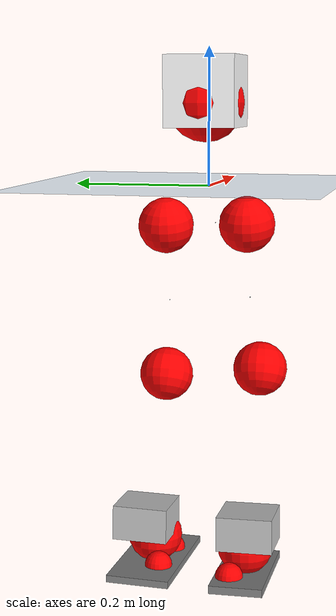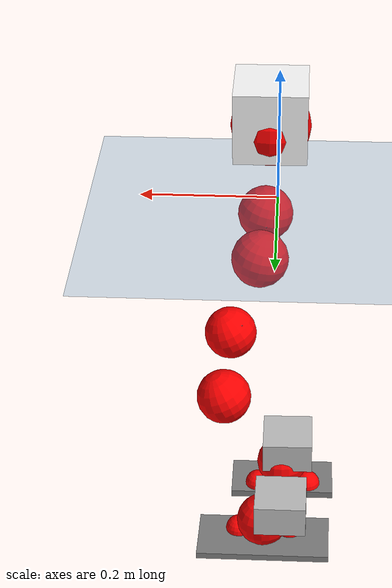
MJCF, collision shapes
<mujoco model="pi_12dof_release_v1">
  <compiler angle="radian" assetdir="assets" balanceinertia="true" inertiafromgeom="false"/>

  <option timestep="0.005" density="1.2" viscosity="2e-05"/>

  <size nkey="1"/>

  <visual>
    <quality shadowsize="8192"/>
    <map shadowclip="0.5"/>
  </visual>

  <default>
    <default class="/">
      <joint armature="0.01" damping="0.01" frictionloss="0.01"/>
      <geom contype="0" conaffinity="0" group="1" solref="-1000 -80"/>
      <site size="0.01 0.005 0.005" group="5"/>
      <general forcelimited="true" biastype="affine" gainprm="20" biasprm="0 -20 -0.5"/>
      <default class="foot">
        <geom size="0.0845 0.036 0.005" type="box" condim="6" group="4" priority="1" friction="0.9 0.2 0.2" solimp="0.015 1 0.005"/>
      </default>
      <default class="reward_collision_sphere">
        <geom group="5" rgba="1 0 0 1"/>
      </default>
    </default>
  </default>

  <asset>
    <texture type="skybox" colorspace="auto" name="//unnamed_texture_0" builtin="gradient" rgb1="0.95 0.95 0.95" rgb2="0.95 0.95 0.95" width="100" height="600"/>
    <texture type="2d" colorspace="auto" name="texplane" builtin="checker" rgb1="0.345 0.575 0.748" rgb2="0.345 0.575 0.748" markrgb="1 1 1" width="512" height="512"/>
    <material name="MatPlane" class="/" texture="texplane" texuniform="true" texrepeat="2 2" specular="0.9"/>
    <mesh name="baselink_1" class="/" file="baselink_1.STL"/>
    <mesh name="r_hip_pitch_link" class="/" file="r_hip_pitch_link.STL"/>
    <mesh name="r_hip_roll_link" class="/" file="r_hip_roll_link.STL"/>
    <mesh name="r_thigh_link" class="/" file="r_thigh_link.STL"/>
    <mesh name="r_calf_link" class="/" file="r_calf_link.STL"/>
    <mesh name="r_ankle_pitch_link" class="/" file="r_ankle_pitch_link.STL"/>
    <mesh name="r_ankle_roll_link" class="/" file="r_ankle_roll_link.STL"/>
    <mesh name="l_hip_pitch_link" class="/" file="l_hip_pitch_link.STL"/>
    <mesh name="l_hip_roll_link" class="/" file="l_hip_roll_link.STL"/>
    <mesh name="l_thigh_link" class="/" file="l_thigh_link.STL"/>
    <mesh name="l_calf_link" class="/" file="l_calf_link.STL"/>
    <mesh name="l_ankle_pitch_link" class="/" file="l_ankle_pitch_link.STL"/>
    <mesh name="l_ankle_roll_link" class="/" file="l_ankle_roll_link.STL"/>
  </asset>

  <worldbody>
    <geom name="floor" class="/" size="100 100 0.125" type="plane" group="0" material="MatPlane"/>
    <light name="toplight_shadow" class="/" pos="0 0 5" dir="0.0990148 0.0990148 -0.990148" type="directional" ambient="0.04 0.04 0.04" diffuse="0.55 0.55 0.55" specular="0.12 0.12 0.12"/>
    <light name="toplight_fill" class="/" pos="0 0 5" dir="0.0990148 0.0990148 -0.990148" type="directional" castshadow="false" ambient="0.04 0.04 0.04" diffuse="0.3 0.3 0.3" specular="0.08 0.08 0.08"/>
    <body name="trunk" pos="0.0109813 0.00682597 0.00300447" quat="0.999991 -0.00267714 0.00295447 -0.00126922">
      <inertial pos="0.0131642 -0.00163783 0.0659149" quat="0.687876 0.00186386 0.0160429 0.725649" mass="2.30186" diaginertia="0.000835378 0.00363868 0.045838"/>
      <joint name="//unnamed_joint_0" type="free"/>
      <geom name="//unnamed_geom_1" class="/" type="mesh" density="0" rgba="1 1 1 1" mesh="baselink_1"/>
      <geom name="//unnamed_geom_2" class="/" size="0.0518506 0.0518506 0.0518506" pos="0 0 0.133128" type="box" rgba="1 1 1 1"/>
      <geom name="//unnamed_geom_3" class="reward_collision_sphere" size="0.0570357" pos="0 0 0.116487"/>
      <site name="imu" class="/" pos="0.00800271 -0.0132761 0.00746367" size="0.0103701"/>
      <camera name="track" class="/" pos="0 -1.67083 0" quat="0.707107 0.707107 0 0" mode="trackcom"/>
      <camera name="ego_camera" class="/" pos="0.0458636 0 0.299539" quat="-0.5 -0.5 0.5 0.5"/>
      <body name="r_hip_pitch_link" pos="0.00557 -0.0134299 -0.0579677" quat="0.992485 0.000662945 -0.122268 0.00489615">
        <inertial pos="0.012469 -0.041636 0.00437069" quat="-0.0254067 0.70779 -0.0276883 0.705423" mass="0.362458" diaginertia="8.19341e-06 3.9804e-05 0.000878981"/>
        <joint name="r_hip_pitch_joint" class="/" pos="0 0 0" axis="-0.0111545 -0.999416 -0.0323001" stiffness="0.0539294" range="-1.75614 1.20848" armature="0.0104221" damping="0.0372182" frictionloss="0.00673836"/>
        <geom name="//unnamed_geom_4" class="/" type="mesh" density="0" rgba="0.75294 0.75294 0.75294 1" mesh="r_hip_pitch_link"/>
        <geom name="//unnamed_geom_5" class="/" size="0.000518506 0.000518506 0.000518506" type="box" rgba="0.75294 0.75294 0.75294 1"/>
        <body name="r_hip_roll_link" pos="0.00151952 -0.0469103 -0.00273433" quat="1 6.7747e-06 -6.4212e-07 -2.16227e-06">
          <inertial pos="-0.01201 0.00120095 -0.110979" quat="0.709798 -0.080899 -0.0836779 0.694724" mass="0.447253" diaginertia="2.87104e-05 0.000113056 0.00172759"/>
          <joint name="r_hip_roll_joint" class="/" pos="0 0 0" axis="-0.999992 0.00344388 0.00190646" range="0.0517288 0.4052" armature="0.0159568" damping="0.0402465" frictionloss="0.0111836"/>
          <geom name="//unnamed_geom_6" class="/" type="mesh" density="0" rgba="0.75294 0.75294 0.75294 1" mesh="r_hip_roll_link"/>
          <geom name="//unnamed_geom_7" class="/" size="0.000518506 0.000518506 0.000518506" type="box" rgba="0.75294 0.75294 0.75294 1"/>
          <geom name="//unnamed_geom_8" class="reward_collision_sphere" size="0.0414805"/>
          <body name="r_thigh_link" pos="-0.00141316 -0.000476172 -0.115518" quat="0.999995 -0.00255209 -0.000271677 0.00177153">
            <inertial pos="-0.00541591 -0.00365375 -0.0716595" quat="0.74645 0.663915 0.0289018 -0.0345511" mass="0.122395" diaginertia="1.09089e-05 3.61567e-05 0.00079289"/>
            <joint name="r_thigh_joint" class="/" pos="0 0 0" axis="-0.0401215 0.00407578 -0.999186" stiffness="0.0542267" range="-0.302878 0.470751" armature="0.0154334" damping="0" frictionloss="0.00966962"/>
            <geom name="//unnamed_geom_9" class="/" type="mesh" density="0" rgba="0.75294 0.75294 0.75294 1" mesh="r_thigh_link"/>
            <geom name="//unnamed_geom_10" class="/" size="0.000518506 0.000518506 0.000518506" type="box" rgba="0.75294 0.75294 0.75294 1"/>
            <body name="r_calf_link" pos="-0.000999608 -0.0111969 -0.118416" quat="0.947525 0.00187624 0.319675 0.00042481">
              <inertial pos="-0.00824054 -0.00234707 -0.115904" quat="0.999965 0.00250076 -0.00408047 0.0068317" mass="0.695619" diaginertia="0.000275215 0.00131569 0.00219143"/>
              <joint name="r_calf_joint" class="/" pos="0 0 0" axis="0.000787731 -1 0.00050696" range="-1.67279 0.833662" armature="0.00350462" damping="0.0485675" frictionloss="0.0041839"/>
              <geom name="//unnamed_geom_11" class="/" type="mesh" density="0" rgba="0.75294 0.75294 0.75294 1" mesh="r_calf_link"/>
              <geom name="//unnamed_geom_12" class="/" size="0.000518506 0.000518506 0.000518506" type="box" rgba="0.75294 0.75294 0.75294 1"/>
              <geom name="//unnamed_geom_13" class="reward_collision_sphere" size="0.0414805"/>
              <body name="r_ankle_pitch_link" pos="0.0018966 0.00187699 -0.24253" quat="0.980171 -0.00292982 -0.198083 -0.00436897">
                <inertial pos="0.00996838 0.0145938 0.00163248" quat="0.00203446 0.708296 -0.0026137 0.705908" mass="0.233145" diaginertia="2.76736e-05 9.73976e-05 0.00174254"/>
                <joint name="r_ankle_pitch_joint" class="/" pos="0 0 0" axis="0.015277 -0.998295 0.0563412" stiffness="0.052831" range="-1.13115 0.345295" armature="0.0101616" damping="0.0129637" frictionloss="0.0137784"/>
                <geom name="//unnamed_geom_14" class="/" type="mesh" density="0" rgba="0.75294 0.75294 0.75294 1" mesh="r_ankle_pitch_link"/>
                <geom name="//unnamed_geom_15" class="/" size="0.0404435 0.0414805 0.0259253" type="box" rgba="0.75294 0.75294 0.75294 1"/>
                <body name="r_ankle_roll_link" pos="0.0396722 0.00651014 0.00106233" quat="1 -1.35378e-05 -9.32481e-05 8.87677e-05">
                  <inertial pos="-0.0191777 -0.000377922 -0.0224893" quat="0.559393 0.431511 0.433084 0.559746" mass="0.507376" diaginertia="7.66639e-05 0.000408098 0.00328739"/>
                  <joint name="r_ankle_roll_joint" class="/" pos="0 0 0" axis="-0.997882 -0.0405665 0.050856" range="-0.173068 0.326381" armature="0.0105576" damping="0.0309684" frictionloss="0.0112013"/>
                  <geom name="//unnamed_geom_16" class="/" type="mesh" density="0" rgba="0.75294 0.75294 0.75294 1" mesh="r_ankle_roll_link"/>
                  <geom name="//unnamed_geom_17" class="/" type="mesh" rgba="0.75294 0.75294 0.75294 1" mesh="r_ankle_roll_link"/>
                  <geom name="right_foot" class="foot" size="0.0842047 0.0396883 0.0059147" pos="-0.0311872 0 -0.0732206"/>
                  <geom name="//unnamed_geom_19" class="reward_collision_sphere" size="0.0414805" pos="-0.0305757 0 -0.0332821"/>
                  <geom name="//unnamed_geom_20" class="reward_collision_sphere" size="0.0207402" pos="0.00917272 0.0167083 -0.0665642"/>
                  <geom name="//unnamed_geom_21" class="reward_collision_sphere" size="0.0207402" pos="-0.0733818 0.0167083 -0.0665642"/>
                  <site name="right_foot" class="foot" pos="-0.0311872 0 -0.0732206" size="0.0103701"/>
                </body>
              </body>
            </body>
          </body>
        </body>
      </body>
      <body name="l_hip_pitch_link" pos="0.000467658 0.0193301 -0.0602725" quat="0.992402 0.00604346 -0.122884 -0.00085076">
        <inertial pos="-0.0104708 0.045897 -2.43622e-05" quat="-0.0377988 0.706962 0.0303445 0.705588" mass="0.437712" diaginertia="1.11054e-05 3.9575e-05 0.00132948"/>
        <joint name="l_hip_pitch_joint" class="/" pos="0 0 0" axis="0.000509653 1 0.000300284" stiffness="0.011281" range="-1.35262 1.79027" armature="0.0063915" damping="0.0403514" frictionloss="0.00861488"/>
        <geom name="//unnamed_geom_22" class="/" type="mesh" density="0" rgba="0.75294 0.75294 0.75294 1" mesh="l_hip_pitch_link"/>
        <geom name="//unnamed_geom_23" class="/" size="0.000518506 0.000518506 0.000518506" type="box" rgba="0.75294 0.75294 0.75294 1"/>
        <body name="l_hip_roll_link" pos="0.01039 0.0438768 -0.00736532" quat="0.999986 -0.000843985 0.00430294 -0.00292542">
          <inertial pos="0.000767363 0.000931671 -0.101084" quat="0.679386 -0.0388304 -0.080985 0.728264" mass="0.482792" diaginertia="2.8021e-05 0.000124717 0.00159992"/>
          <joint name="l_hip_roll_joint" class="/" pos="0 0 0" axis="-0.999797 -0.0108187 0.0169691" range="-0.463567 0.174495" armature="0.00644498" damping="0.0646666" frictionloss="0.00813737"/>
          <geom name="//unnamed_geom_24" class="/" type="mesh" density="0" rgba="0.75294 0.75294 0.75294 1" mesh="l_hip_roll_link"/>
          <geom name="//unnamed_geom_25" class="/" size="0.000518506 0.000518506 0.000518506" type="box" rgba="0.75294 0.75294 0.75294 1"/>
          <geom name="//unnamed_geom_26" class="reward_collision_sphere" size="0.0414805"/>
          <body name="l_thigh_link" pos="-0.00213251 -9.62561e-05 -0.119641" quat="0.999999 0.000704142 -0.000443889 -0.000886777">
            <inertial pos="0.00107311 -0.000875406 -0.0843859" quat="0.67713 0.735862 0.00151769 0.000357486" mass="0.125329" diaginertia="1.07114e-05 3.99611e-05 0.000739333"/>
            <joint name="l_thigh_joint" class="/" pos="0 0 0" axis="0.00194281 0.00381955 -0.999991" range="-0.596085 0.28106" armature="0.0131637" damping="0.00155492" frictionloss="0.0101833"/>
            <geom name="//unnamed_geom_27" class="/" type="mesh" density="0" rgba="0.75294 0.75294 0.75294 1" mesh="l_thigh_link"/>
            <geom name="//unnamed_geom_28" class="/" size="0.000518506 0.000518506 0.000518506" type="box" rgba="0.75294 0.75294 0.75294 1"/>
            <body name="l_calf_link" pos="-0.0024869 0.0107166 -0.125145" quat="0.947617 0.00289312 0.319389 -0.00197415">
              <inertial pos="7.10783e-05 -0.00493942 -0.116503" quat="0.99902 -0.0160709 -0.00363378 -0.0410882" mass="0.884741" diaginertia="0.000275441 0.0012915 0.00226728"/>
              <joint name="l_calf_joint" class="/" pos="0 0 0" axis="0.0108642 0.999841 0.0141344" stiffness="0.00208055" range="-0.645162 1.66046" armature="0.0162727" damping="0" frictionloss="0.00457212"/>
              <geom name="//unnamed_geom_29" class="/" type="mesh" density="0" rgba="0.75294 0.75294 0.75294 1" mesh="l_calf_link"/>
              <geom name="//unnamed_geom_30" class="/" size="0.000518506 0.000518506 0.000518506" type="box" rgba="0.75294 0.75294 0.75294 1"/>
              <geom name="//unnamed_geom_31" class="reward_collision_sphere" size="0.0414805"/>
              <body name="l_ankle_pitch_link" pos="0.0012269 0.00630091 -0.224525" quat="0.979719 0.000682634 -0.200376 -5.06509e-05">
                <inertial pos="0.00363457 0.00358844 0.00130985" quat="0.00353564 0.70585 0.000740302 0.708352" mass="0.213466" diaginertia="2.83492e-05 9.17962e-05 0.00177851"/>
                <joint name="l_ankle_pitch_joint" class="/" pos="0 0 0" axis="4.48404e-05 1 0.000122647" range="-0.511364 1.29047" armature="0.0107163" damping="0" frictionloss="0.0085838"/>
                <geom name="//unnamed_geom_32" class="/" type="mesh" density="0" rgba="0.75294 0.75294 0.75294 1" mesh="l_ankle_pitch_link"/>
                <geom name="//unnamed_geom_33" class="/" size="0.0404435 0.0414805 0.0259253" type="box" rgba="0.75294 0.75294 0.75294 1"/>
                <body name="l_ankle_roll_link" pos="0.0590617 -0.00741245 -0.0018984" quat="1 3.51785e-05 5.98881e-05 -5.43153e-05">
                  <inertial pos="-0.0269102 -0.00370376 -0.0290362" quat="0.555549 0.438623 0.442578 0.550545" mass="0.562415" diaginertia="0.000103663 0.000522145 0.00379794"/>
                  <joint name="l_ankle_roll_joint" class="/" pos="0 0 0" axis="-0.999169 0.0378844 -0.015059" stiffness="0.0266388" range="-0.126733 0.156574" armature="0.0110174" damping="0" frictionloss="0.00974428"/>
                  <geom name="//unnamed_geom_34" class="/" type="mesh" density="0" rgba="0.75294 0.75294 0.75294 1" mesh="l_ankle_roll_link"/>
                  <geom name="//unnamed_geom_35" class="/" type="mesh" rgba="0.75294 0.75294 0.75294 1" mesh="l_ankle_roll_link"/>
                  <geom name="left_foot" class="foot" size="0.105129 0.04745 0.00530865" pos="-0.0311872 0 -0.0732206"/>
                  <geom name="//unnamed_geom_37" class="reward_collision_sphere" size="0.0414805" pos="-0.0305757 0 -0.0332821"/>
                  <geom name="//unnamed_geom_38" class="reward_collision_sphere" size="0.0207402" pos="0.00917272 -0.0167083 -0.0665642"/>
                  <geom name="//unnamed_geom_39" class="reward_collision_sphere" size="0.0207402" pos="-0.0733818 -0.0167083 -0.0665642"/>
                  <site name="left_foot" class="foot" pos="-0.0311872 0 -0.0732206" size="0.0103701"/>
                </body>
              </body>
            </body>
          </body>
        </body>
      </body>
    </body>
  </worldbody>

  <contact>
    <pair class="/" geom1="floor" geom2="right_foot" name="//unnamed_contact_1"/>
    <pair class="/" geom1="floor" geom2="left_foot" name="//unnamed_contact_0"/>
  </contact>

  <actuator>
    <general name="r_hip_pitch_joint" class="/" joint="r_hip_pitch_joint" forcerange="-22.4174 22.4174" gainprm="20.8543" biasprm="0 -20.8543 -0.588386"/>
    <general name="r_hip_roll_joint" class="/" joint="r_hip_roll_joint" forcerange="-21.517 21.517" gainprm="20.8543" biasprm="0 -20.8543 -0.588386"/>
    <general name="r_thigh_joint" class="/" joint="r_thigh_joint" forcerange="-21.058 21.058" gainprm="20.8543" biasprm="0 -20.8543 -0.588386"/>
    <general name="r_calf_joint" class="/" joint="r_calf_joint" forcerange="-21.8886 21.8886" gainprm="20.8543" biasprm="0 -20.8543 -0.588386"/>
    <general name="r_ankle_pitch_joint" class="/" joint="r_ankle_pitch_joint" forcerange="-21.3801 21.3801" gainprm="20.8543" biasprm="0 -20.8543 -0.588386"/>
    <general name="r_ankle_roll_joint" class="/" joint="r_ankle_roll_joint" forcerange="-21.9649 21.9649" gainprm="20.8543" biasprm="0 -20.8543 -0.588386"/>
    <general name="l_hip_pitch_joint" class="/" joint="l_hip_pitch_joint" forcerange="-20.8482 20.8482" gainprm="20.8543" biasprm="0 -20.8543 -0.588386"/>
    <general name="l_hip_roll_joint" class="/" joint="l_hip_roll_joint" forcerange="-25.5584 25.5584" gainprm="20.8543" biasprm="0 -20.8543 -0.588386"/>
    <general name="l_thigh_joint" class="/" joint="l_thigh_joint" forcerange="-21.4193 21.4193" gainprm="20.8543" biasprm="0 -20.8543 -0.588386"/>
    <general name="l_calf_joint" class="/" joint="l_calf_joint" forcerange="-11.9717 11.9717" gainprm="20.8543" biasprm="0 -20.8543 -0.588386"/>
    <general name="l_ankle_pitch_joint" class="/" joint="l_ankle_pitch_joint" forcerange="-21.6336 21.6336" gainprm="20.8543" biasprm="0 -20.8543 -0.588386"/>
    <general name="l_ankle_roll_joint" class="/" joint="l_ankle_roll_joint" forcerange="-27.8519 27.8519" gainprm="20.8543" biasprm="0 -20.8543 -0.588386"/>
  </actuator>

  <sensor>
    <gyro site="imu" name="imu_angular_velocity"/>
    <velocimeter site="imu" name="imu_linear_velocity"/>
    <framelinvel objtype="site" objname="left_foot" name="left_foot_global_linear_velocity"/>
    <framelinvel objtype="site" objname="right_foot" name="right_foot_global_linear_velocity"/>
  </sensor>

  <keyframe>
    <key name="home" qpos="0 0 0.291 1 0 0 0 0.4 0 0 -0.8 0.4 0 -0.4 0 0 0.8 -0.4 0"/>
  </keyframe>
</mujoco>
